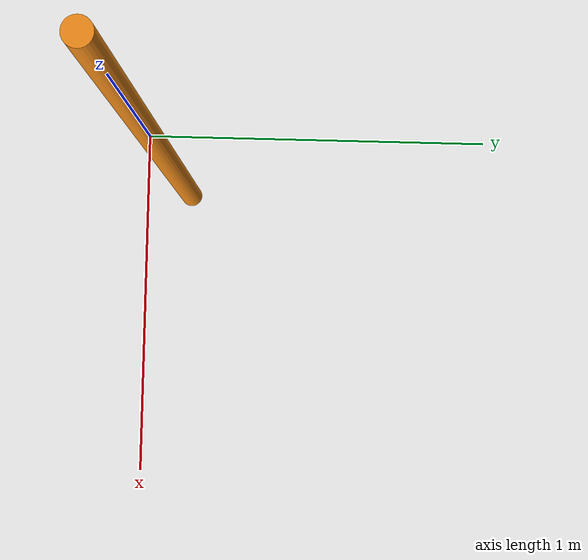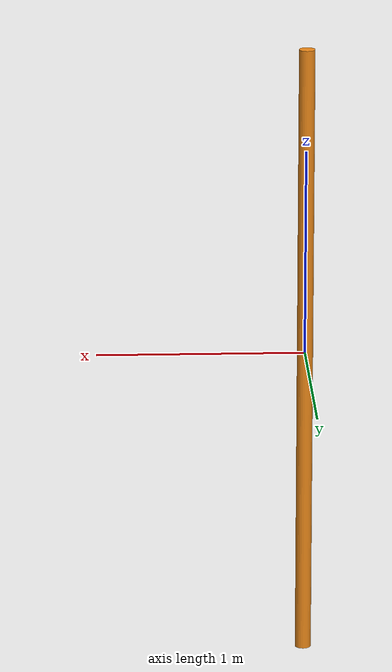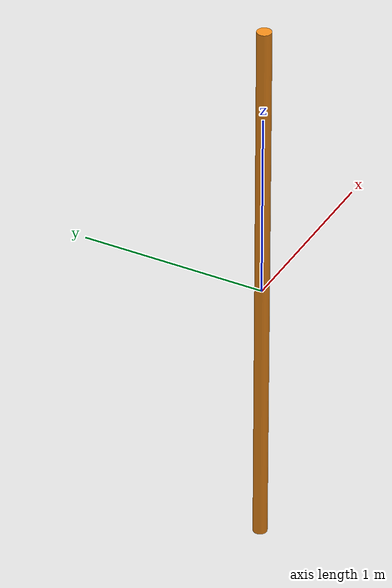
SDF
<?xml version='1.0'?>
<sdf version='1.5'>

  <model name='pole'>
    <pose>0 0 0 0 0 0</pose>
    <self_collide> 0 </self_collide>
    <static> 1</static>

    <link name='pole'>
      <pose>0 0 0 0 0 0</pose>

      <visual name='pole_vis'>
        <geometry>
          <cylinder>
            <radius>0.0381</radius>
            <length>3.0</length>
          </cylinder>
        </geometry>
        <material>
          <script>
            <uri>file://media/materials/scripts/gazebo.material</uri>
            <name>Gazebo/Orange</name>
          </script>
        </material>
      </visual>

      <collision name='gate_top_collide'>
        <geometry>
          <cylinder>
            <radius>0.0381</radius>
            <length>3.0</length>
          </cylinder>
        </geometry>
      </collision>
    </link>

  </model>
</sdf>
